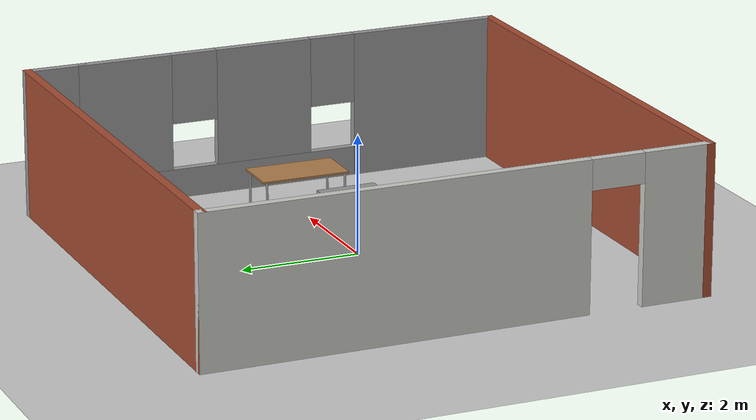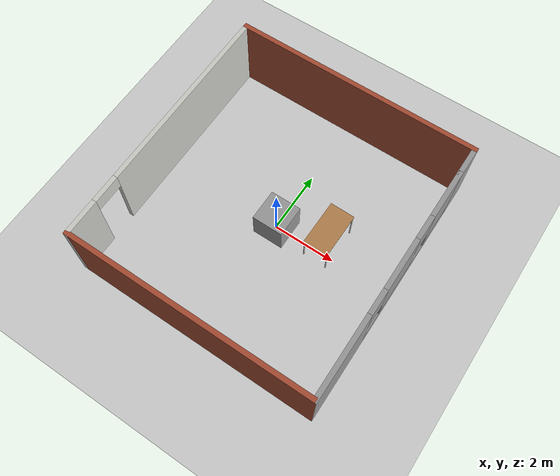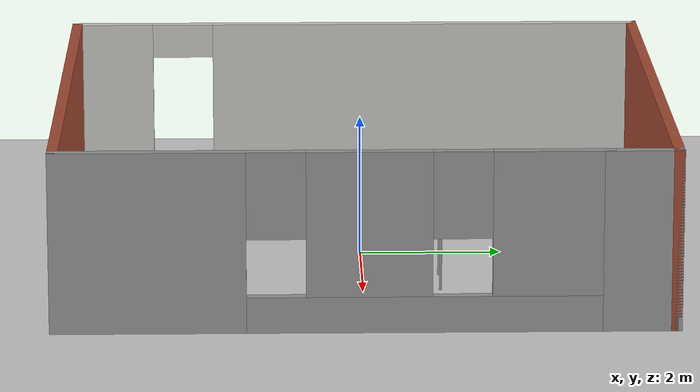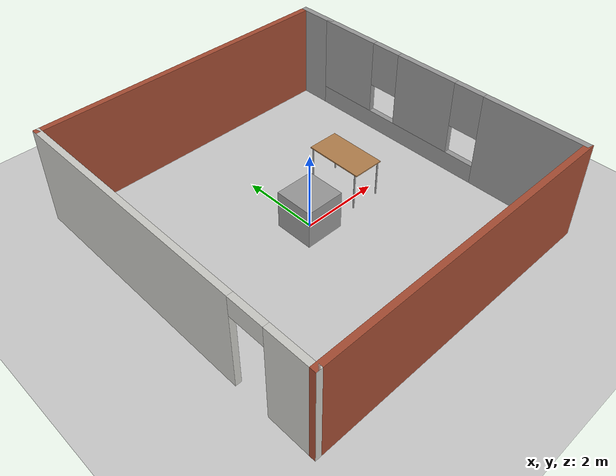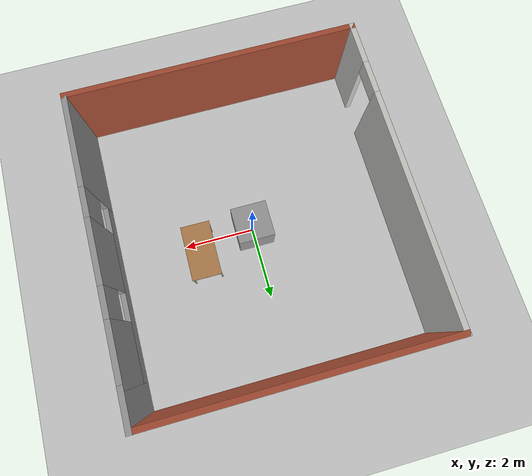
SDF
<sdf version="1.7">
 <world name="default">
  <light name="sun" type="directional">
   <pose>0 0 10 0 -0 0</pose>
   <diffuse>0.8 0.8 0.8 1</diffuse>
   <specular>0.2 0.2 0.2 1</specular>
   <attenuation>
    <range>1000</range>
    <constant>0.9</constant>
    <linear>0.01</linear>
    <quadratic>0.001</quadratic>
   </attenuation>
   <direction>-0.5 0.1 -0.9</direction>
   <spot><inner_angle>0</inner_angle><outer_angle>0</outer_angle><falloff>0</falloff></spot>
  </light>
  <model name="ground_plane">
   <static>1</static>
   <link name="link">
    <collision name="collision">
     <geometry><plane><normal>0 0 1</normal><size>100 100</size></plane></geometry>
     <surface>
      <contact><collide_bitmask>65535</collide_bitmask></contact>
      <friction><ode><mu>100</mu><mu2>50</mu2></ode></friction>
     </surface>
    </collision>
    <visual name="visual">
     <cast_shadows>0</cast_shadows>
     <geometry><plane><normal>0 0 1</normal><size>100 100</size></plane></geometry>
     <material>
      <script><uri>file://media/materials/scripts/gazebo.material</uri><name>Gazebo/Grey</name></script>
     </material>
    </visual>
   </link>
  </model>
  <gravity>0 0 -9.8</gravity>
  <magnetic_field>6e-06 2.3e-05 -4.2e-05</magnetic_field>
  <atmosphere type="adiabatic"/>
  <physics type="ode">
   <max_step_size>0.001</max_step_size>
   <real_time_factor>1</real_time_factor>
   <real_time_update_rate>1000</real_time_update_rate>
  </physics>
  <scene><ambient>0.4 0.4 0.4 1</ambient><background>0.7 0.7 0.7 1</background><shadows>1</shadows></scene>
  <spherical_coordinates>
   <surface_model>EARTH_WGS84</surface_model>
   <latitude_deg>0</latitude_deg>
   <longitude_deg>0</longitude_deg>
   <elevation>0</elevation>
   <heading_deg>0</heading_deg>
  </spherical_coordinates>
  <model name="shiyanshihuanjing.world">
   <link name="Wall_10">
    <collision name="Wall_10_Collision">
     <geometry><box><size>8 0.15 2.5</size></box></geometry>
     <pose>0 0 1.25 0 -0 0</pose>
    </collision>
    <visual name="Wall_10_Visual">
     <pose>0 0 1.25 0 -0 0</pose>
     <geometry><box><size>8 0.15 2.5</size></box></geometry>
     <material>
      <script><uri>file://media/materials/scripts/gazebo.material</uri><name>Gazebo/Bricks</name></script>
      <ambient>1 1 1 1</ambient>
     </material>
     <meta><layer>0</layer></meta>
    </visual>
    <pose>0 -4.175 0 0 -0 3.14159</pose>
   </link>
   <link name="Wall_11">
    <pose>-3.925 -0 0 0 -0 1.5708</pose>
    <visual name="Wall_11_Visual_0">
     <pose>-3.64584 0 1.25 0 -0 0</pose>
     <geometry><box><size>1.20832 0.15 2.5</size></box></geometry>
     <material>
      <script><uri>file://media/materials/scripts/gazebo.material</uri><name>Gazebo/CeilingTiled</name></script>
      <ambient>1 1 1 1</ambient>
     </material>
     <meta><layer>0</layer></meta>
    </visual>
    <collision name="Wall_11_Collision_0">
     <geometry><box><size>1.20832 0.15 2.5</size></box></geometry>
     <pose>-3.64584 0 1.25 0 -0 0</pose>
    </collision>
    <visual name="Wall_11_Visual_1">
     <pose>1.05416 0 1.25 0 -0 0</pose>
     <geometry><box><size>6.39168 0.15 2.5</size></box></geometry>
     <material>
      <script><uri>file://media/materials/scripts/gazebo.material</uri><name>Gazebo/CeilingTiled</name></script>
      <ambient>1 1 1 1</ambient>
     </material>
     <meta><layer>0</layer></meta>
    </visual>
    <collision name="Wall_11_Collision_1">
     <geometry><box><size>6.39168 0.15 2.5</size></box></geometry>
     <pose>1.05416 0 1.25 0 -0 0</pose>
    </collision>
    <visual name="Wall_11_Visual_2">
     <pose>-2.59168 0 2.25 0 -0 0</pose>
     <geometry><box><size>0.9 0.15 0.5</size></box></geometry>
     <material>
      <script><uri>file://media/materials/scripts/gazebo.material</uri><name>Gazebo/CeilingTiled</name></script>
      <ambient>1 1 1 1</ambient>
     </material>
     <meta><layer>0</layer></meta>
    </visual>
    <collision name="Wall_11_Collision_2">
     <geometry><box><size>0.9 0.15 0.5</size></box></geometry>
     <pose>-2.59168 0 2.25 0 -0 0</pose>
    </collision>
   </link>
   <link name="Wall_12">
    <collision name="Wall_12_Collision">
     <geometry><box><size>8 0.15 2.5</size></box></geometry>
     <pose>0 0 1.25 0 -0 0</pose>
    </collision>
    <visual name="Wall_12_Visual">
     <pose>0 0 1.25 0 -0 0</pose>
     <geometry><box><size>8 0.15 2.5</size></box></geometry>
     <material>
      <script><uri>file://media/materials/scripts/gazebo.material</uri><name>Gazebo/Bricks</name></script>
      <ambient>1 1 1 1</ambient>
     </material>
     <meta><layer>0</layer></meta>
    </visual>
    <pose>0 4.175 0 0 -0 0</pose>
   </link>
   <link name="Wall_13">
    <collision name="Wall_13_Collision">
     <geometry><box><size>1.07065 0.15 2.5</size></box></geometry>
     <pose>0 0 1.25 0 -0 0</pose>
    </collision>
    <visual name="Wall_13_Visual">
     <pose>0 0 1.25 0 -0 0</pose>
     <geometry><box><size>1.07065 0.15 2.5</size></box></geometry>
     <material>
      <script><uri>file://media/materials/scripts/gazebo.material</uri><name>Gazebo/Grey</name></script>
      <ambient>1 1 1 1</ambient>
     </material>
     <meta><layer>0</layer></meta>
    </visual>
    <pose>3.925 3.71468 0 0 -0 -1.5708</pose>
   </link>
   <link name="Wall_5">
    <pose>3.925 -0.460325 0 0 -0 1.5708</pose>
    <visual name="Wall_5_Visual_0">
     <pose>-2.4662 0 1.25 0 -0 0</pose>
     <geometry><box><size>2.64695 0.15 2.5</size></box></geometry>
     <material>
      <script><uri>file://media/materials/scripts/gazebo.material</uri><name>Gazebo/Grey</name></script>
      <ambient>1 1 1 1</ambient>
     </material>
     <meta><layer>0</layer></meta>
    </visual>
    <collision name="Wall_5_Collision_0">
     <geometry><box><size>2.64695 0.15 2.5</size></box></geometry>
     <pose>-2.4662 0 1.25 0 -0 0</pose>
    </collision>
    <visual name="Wall_5_Visual_1">
     <pose>1.32347 0 0.25 0 -0 0</pose>
     <geometry><box><size>4.9324 0.15 0.5</size></box></geometry>
     <material>
      <script><uri>file://media/materials/scripts/gazebo.material</uri><name>Gazebo/Grey</name></script>
      <ambient>1 1 1 1</ambient>
     </material>
     <meta><layer>0</layer></meta>
    </visual>
    <collision name="Wall_5_Collision_1">
     <geometry><box><size>4.9324 0.15 0.5</size></box></geometry>
     <pose>1.32347 0 0.25 0 -0 0</pose>
    </collision>
    <visual name="Wall_5_Visual_2">
     <pose>0.507035 0 1.5 0 -0 0</pose>
     <geometry><box><size>1.69952 0.15 2</size></box></geometry>
     <material>
      <script><uri>file://media/materials/scripts/gazebo.material</uri><name>Gazebo/Grey</name></script>
      <ambient>1 1 1 1</ambient>
     </material>
     <meta><layer>0</layer></meta>
    </visual>
    <collision name="Wall_5_Collision_2">
     <geometry><box><size>1.69952 0.15 2</size></box></geometry>
     <pose>0.507035 0 1.5 0 -0 0</pose>
    </collision>
    <visual name="Wall_5_Visual_3">
     <pose>2.97324 0 1.5 0 -0 0</pose>
     <geometry><box><size>1.63288 0.15 2</size></box></geometry>
     <material>
      <script><uri>file://media/materials/scripts/gazebo.material</uri><name>Gazebo/Grey</name></script>
      <ambient>1 1 1 1</ambient>
     </material>
     <meta><layer>0</layer></meta>
    </visual>
    <collision name="Wall_5_Collision_3">
     <geometry><box><size>1.63288 0.15 2</size></box></geometry>
     <pose>2.97324 0 1.5 0 -0 0</pose>
    </collision>
    <visual name="Wall_5_Visual_4">
     <pose>-0.742728 0 1.9 0 -0 0</pose>
     <geometry><box><size>0.8 0.15 1.2</size></box></geometry>
     <material>
      <script><uri>file://media/materials/scripts/gazebo.material</uri><name>Gazebo/Grey</name></script>
      <ambient>1 1 1 1</ambient>
     </material>
     <meta><layer>0</layer></meta>
    </visual>
    <collision name="Wall_5_Collision_4">
     <geometry><box><size>0.8 0.15 1.2</size></box></geometry>
     <pose>-0.742728 0 1.9 0 -0 0</pose>
    </collision>
    <visual name="Wall_5_Visual_5">
     <pose>1.7568 0 1.9 0 -0 0</pose>
     <geometry><box><size>0.8 0.15 1.2</size></box></geometry>
     <material>
      <script><uri>file://media/materials/scripts/gazebo.material</uri><name>Gazebo/Grey</name></script>
      <ambient>1 1 1 1</ambient>
     </material>
     <meta><layer>0</layer></meta>
    </visual>
    <collision name="Wall_5_Collision_5">
     <geometry><box><size>0.8 0.15 1.2</size></box></geometry>
     <pose>1.7568 0 1.9 0 -0 0</pose>
    </collision>
   </link>
   <static>1</static>
  </model>
  <model name="unit_box">
   <pose>-0 -0 0.5 0 -0 0</pose>
   <link name="link">
    <inertial>
     <mass>1</mass>
     <inertia>
      <ixx>0.166667</ixx>
      <ixy>0</ixy>
      <ixz>0</ixz>
      <iyy>0.166667</iyy>
      <iyz>0</iyz>
      <izz>0.166667</izz>
     </inertia>
    </inertial>
    <collision name="collision"><geometry><box><size>1 1 1</size></box></geometry></collision>
    <visual name="visual">
     <geometry><box><size>1 1 1</size></box></geometry>
     <material>
      <script><name>Gazebo/Grey</name><uri>file://media/materials/scripts/gazebo.material</uri></script>
     </material>
    </visual>
   </link>
  </model>
  <model name="table">
   <static>1</static>
   <link name="link">
    <collision name="surface">
     <pose>0 0 1 0 -0 0</pose>
     <geometry><box><size>1.5 0.8 0.03</size></box></geometry>
     <surface><friction><ode><mu>0.6</mu><mu2>0.6</mu2></ode></friction></surface>
    </collision>
    <visual name="visual1">
     <pose>0 0 1 0 -0 0</pose>
     <geometry><box><size>1.5 0.8 0.03</size></box></geometry>
     <material>
      <script><uri>file://media/materials/scripts/gazebo.material</uri><name>Gazebo/Wood</name></script>
     </material>
    </visual>
    <collision name="front_left_leg">
     <pose>0.68 0.38 0.5 0 -0 0</pose>
     <geometry><cylinder><radius>0.02</radius><length>1</length></cylinder></geometry>
    </collision>
    <visual name="front_left_leg">
     <pose>0.68 0.38 0.5 0 -0 0</pose>
     <geometry><cylinder><radius>0.02</radius><length>1</length></cylinder></geometry>
     <material>
      <script><uri>file://media/materials/scripts/gazebo.material</uri><name>Gazebo/Grey</name></script>
     </material>
    </visual>
    <collision name="front_right_leg">
     <pose>0.68 -0.38 0.5 0 -0 0</pose>
     <geometry><cylinder><radius>0.02</radius><length>1</length></cylinder></geometry>
    </collision>
    <visual name="front_right_leg">
     <pose>0.68 -0.38 0.5 0 -0 0</pose>
     <geometry><cylinder><radius>0.02</radius><length>1</length></cylinder></geometry>
     <material>
      <script><uri>file://media/materials/scripts/gazebo.material</uri><name>Gazebo/Grey</name></script>
     </material>
    </visual>
    <collision name="back_right_leg">
     <pose>-0.68 -0.38 0.5 0 -0 0</pose>
     <geometry><cylinder><radius>0.02</radius><length>1</length></cylinder></geometry>
    </collision>
    <visual name="back_right_leg">
     <pose>-0.68 -0.38 0.5 0 -0 0</pose>
     <geometry><cylinder><radius>0.02</radius><length>1</length></cylinder></geometry>
     <material>
      <script><uri>file://media/materials/scripts/gazebo.material</uri><name>Gazebo/Grey</name></script>
     </material>
    </visual>
    <collision name="back_left_leg">
     <pose>-0.68 0.38 0.5 0 -0 0</pose>
     <geometry><cylinder><radius>0.02</radius><length>1</length></cylinder></geometry>
    </collision>
    <visual name="back_left_leg">
     <pose>-0.68 0.38 0.5 0 -0 0</pose>
     <geometry><cylinder><radius>0.02</radius><length>1</length></cylinder></geometry>
     <material>
      <script><uri>file://media/materials/scripts/gazebo.material</uri><name>Gazebo/Grey</name></script>
     </material>
    </visual>
   </link>
   <pose>1.55086 0.4 0 0 -0 1.56</pose>
  </model>
 </world>
</sdf>
